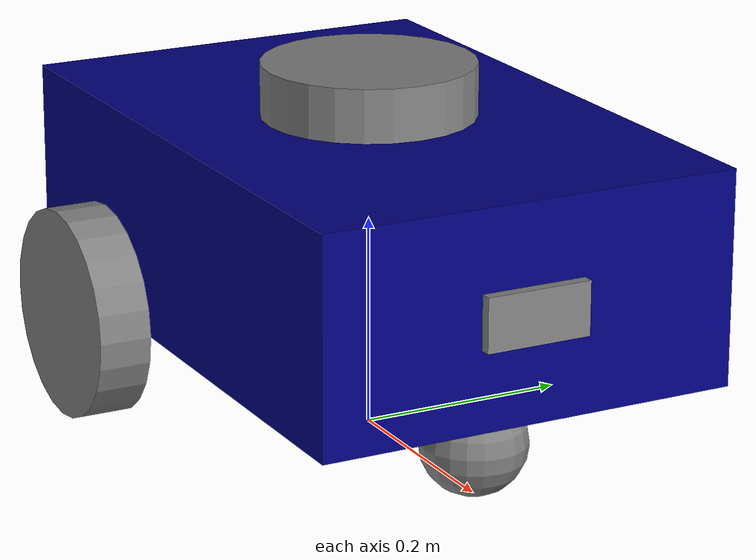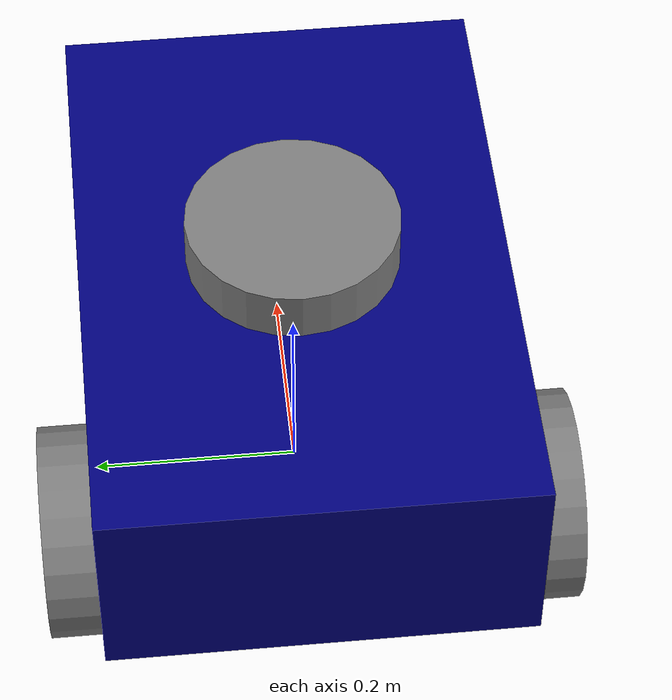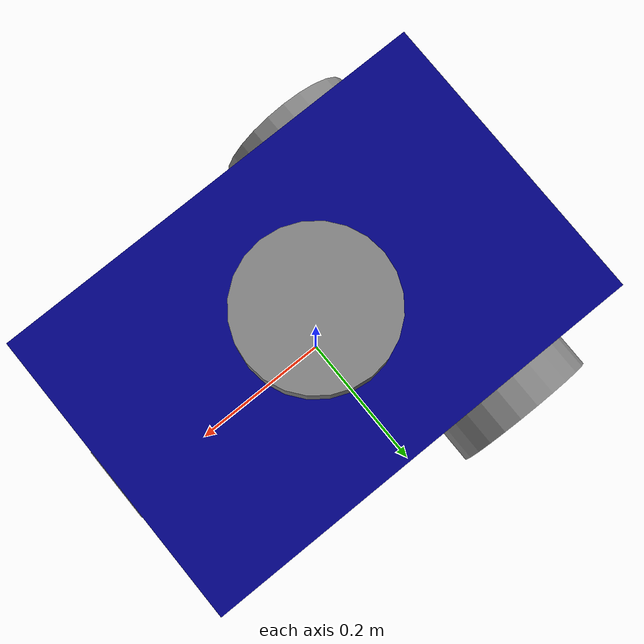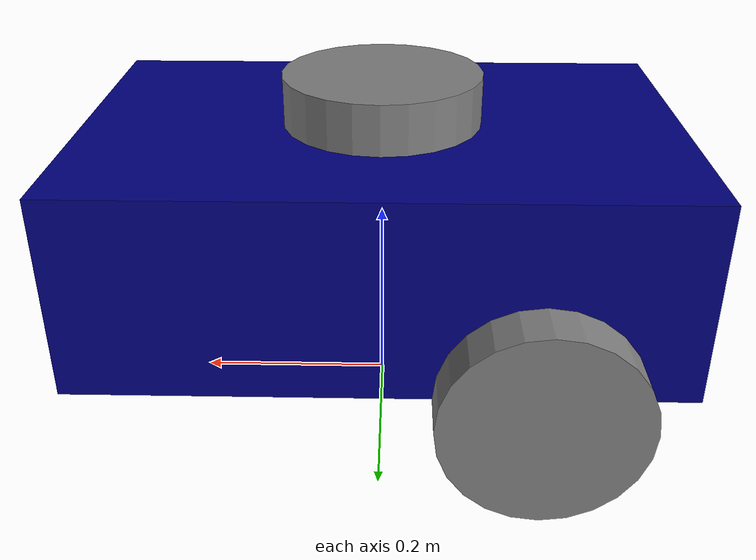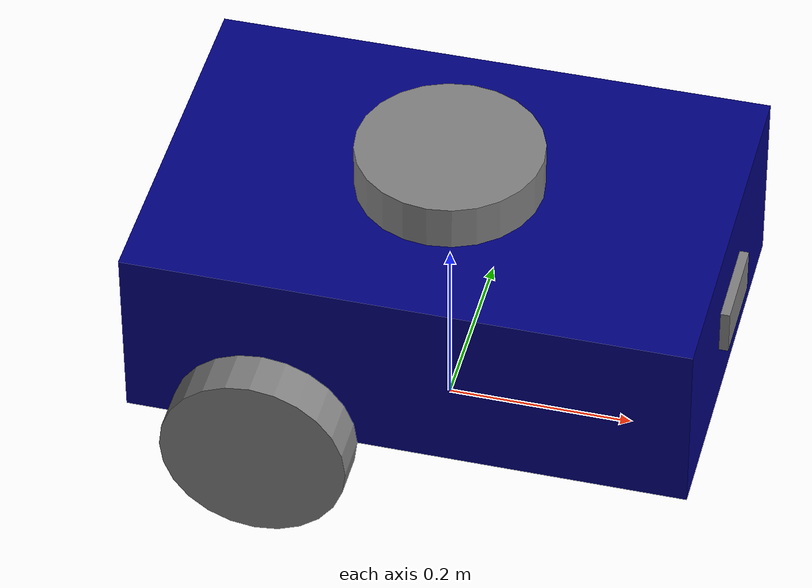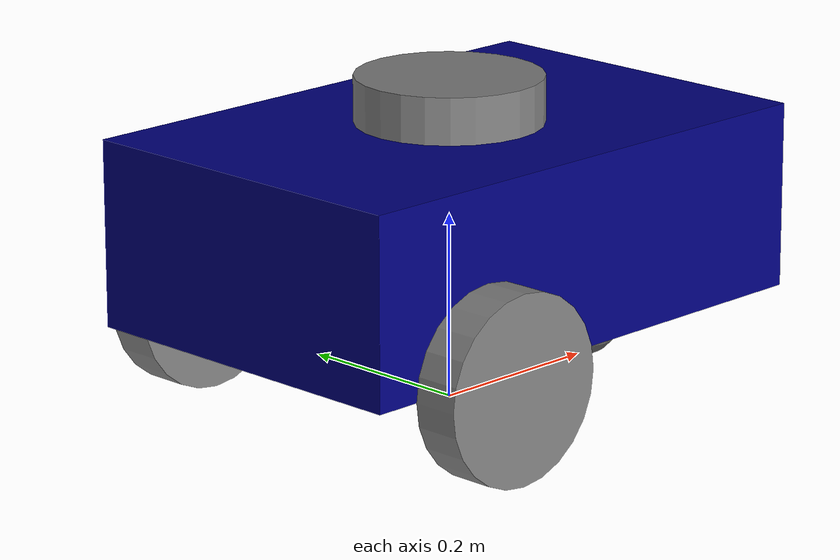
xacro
<?xml version="1.0"?>
<robot name="diff_robot" xmlns:xacro="http://www.ros.org/wiki/xacro">

    <xacro:include filename="common_properties.xacro" />
    <xacro:include filename="mobile_base.xacro" />
    <xacro:include filename="mobile_base_gazebo.xacro" />
    <xacro:include filename="camera.xacro" />
    <xacro:include filename="lidar.xacro" />

</robot>

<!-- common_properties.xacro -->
<robot xmlns:xacro="http://www.ros.org/wiki/xacro">

    <material name="blue">
        <color rgba="0 0 0.5 1" />
    </material>

    <material name="grey">
        <color rgba="0.5 0.5 0.5 1" />
    </material>

    <material name="orange">
        <color rgba="1.0 0.5 0 1" />
    </material>

    <material name="yellow">
        <color rgba="1.0 1.0 0 1" />
    </material>

    <xacro:macro name="box_inertia" params="m l w h xyz rpy">
        <inertial>
            <origin xyz="${xyz}" rpy="${rpy}" />
            <mass value="${m}" />
            <inertia ixx="${(m/12) * (h*h + w*w)}" ixy="0" ixz="0"
                     iyy="${(m/12) * (h*h + l*l)}" iyz="0"
                     izz="${(m/12) * (w*w + l*l)}" />
        </inertial>
    </xacro:macro>

    <xacro:macro name="cylinder_inertia" params="m r h xyz rpy">
        <inertial>
            <origin xyz="${xyz}" rpy="${rpy}" />
            <mass value="${m}" />
            <inertia ixx="${(m/12) * (3*r*r + h*h)}" ixy="0" ixz="0"
                     iyy="${(m/12) * (3*r*r + h*h)}" iyz="0"
                     izz="${(m/2) * (r*r)}" />
        </inertial>
    </xacro:macro>

    <xacro:macro name="sphere_inertia" params="m r xyz rpy">
        <inertial>
            <origin xyz="${xyz}" rpy="${rpy}" />
            <mass value="${m}" />
            <inertia ixx="${(2/5) * m * r * r}" ixy="0" ixz="0"
                     iyy="${(2/5) * m * r * r}" iyz="0"
                     izz="${(2/5) * m * r * r}" />
        </inertial>
    </xacro:macro>

</robot>

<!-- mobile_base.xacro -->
<robot xmlns:xacro="http://www.ros.org/wiki/xacro">

    <xacro:property name="base_length" value="0.6" />
    <xacro:property name="base_width" value="0.4" />
    <xacro:property name="base_height" value="0.2" />
    <xacro:property name="wheel_radius" value="0.1" />
    <xacro:property name="wheel_length" value="0.05" />

    <link name="base_footprint" />

    <link name="base_link">
        <visual>
            <geometry>
                <box size="${base_length} ${base_width} ${base_height}" />
            </geometry>
            <origin xyz="0 0 ${base_height / 2.0}" rpy="0 0 0" />
            <material name="blue" />
        </visual>
        <collision>
            <geometry>
                <box size="${base_length} ${base_width} ${base_height}" />
            </geometry>
            <origin xyz="0 0 ${base_height / 2.0}" rpy="0 0 0" />
        </collision>
        <xacro:box_inertia m="5.0" l="${2*base_length}" w="${2*base_width}" h="${2*base_height}"
                           xyz="0 0 ${base_height / 2.0}" rpy="0 0 0" />
    </link>

    <xacro:macro name="wheel_link" params="prefix">
        <link name="${prefix}_wheel_link">
            <visual>
                <geometry>
                    <cylinder radius="${wheel_radius}" length="${wheel_length}" />
                </geometry>
                <origin xyz="0 0 0" rpy="${pi / 2.0} 0 0" />
                <material name="grey" />
            </visual>
            <collision>
                <geometry>
                    <cylinder radius="${wheel_radius}" length="${wheel_length}" />
                </geometry>
                <origin xyz="0 0 0" rpy="${pi / 2.0} 0 0" />
            </collision>
            <xacro:cylinder_inertia m="1.0" r="${2*wheel_radius}" h="${2*wheel_length}"
                                    xyz="0 0 0" rpy="${pi / 2.0} 0 0" />
        </link>
    </xacro:macro>

    <xacro:wheel_link prefix="right" />
    <xacro:wheel_link prefix="left" />

    <link name="caster_wheel_link">
        <visual>
            <geometry>
                <sphere radius="${wheel_radius / 2.0}" />
            </geometry>
            <origin xyz="0 0 0" rpy="0 0 0" />
            <material name="grey" />
        </visual>
        <collision>
            <geometry>
                <sphere radius="${wheel_radius / 2.0}" />
            </geometry>
            <origin xyz="0 0 0" rpy="0 0 0" />
        </collision>
        <xacro:sphere_inertia m="0.5" r="${2*wheel_radius / 2.0}"
                              xyz="0 0 0" rpy="0 0 0" />
    </link>

    <joint name="base_joint" type="fixed">
        <parent link="base_footprint" />
        <child link="base_link" />
        <origin xyz="0 0 ${wheel_radius}" rpy="0 0 0"/>
    </joint>

    <joint name="base_right_wheel_joint" type="continuous">
        <parent link="base_link" />
        <child link="right_wheel_link" />
        <origin xyz="${-base_length / 4.0} ${-(base_width + wheel_length) / 2.0} 0" rpy="0 0 0" />
        <axis xyz="0 1 0" />
    </joint>

    <joint name="base_left_wheel_joint" type="continuous">
        <parent link="base_link" />
        <child link="left_wheel_link" />
        <origin xyz="${-base_length / 4.0} ${(base_width + wheel_length) / 2.0} 0" rpy="0 0 0" />
        <axis xyz="0 1 0" />
    </joint>

    <joint name="base_caster_wheel_joint" type="fixed">
        <parent link="base_link" />
        <child link="caster_wheel_link" />
        <origin xyz="${base_length / 3.0} 0 ${-wheel_radius / 2.0}" rpy="0 0 0" />
    </joint>

</robot>

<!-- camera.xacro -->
<robot xmlns:xacro="http://www.ros.org/wiki/xacro">

    <xacro:property name="camera_length" value="0.01" />
    <xacro:property name="camera_width" value="0.1" />
    <xacro:property name="camera_height" value="0.05" />

    <link name="camera_link">
        <visual>
            <geometry>
                <box size="${camera_length} ${camera_width} ${camera_height}" />
            </geometry>
            <material name="grey" />
        </visual>
        <collision>
            <geometry>
                <box size="${camera_length} ${camera_width} ${camera_height}" />
            </geometry>
        </collision>
        <xacro:box_inertia m="0.1" l="${camera_length}" w="${camera_width}" h="${camera_height}"
                           xyz="0 0 0" rpy="0 0 0" />
    </link>

    <joint name="base_camera_joint" type="fixed">
        <parent link="base_link" />
        <child link="camera_link" />
        <origin xyz="${(base_length + camera_length) / 2.0} 0 ${base_height / 2.0}" rpy="0 0 0" />
    </joint>

    <link name="camera_link_optical">
    </link>

    <joint name="camera_optical_joint" type="fixed">
        <!-- these values have to be these values otherwise the gazebo camera
            image won't be aligned properly with the frame it is supposedly
            originating from -->
        <origin xyz="0 0 0" rpy="${-pi/2} 0 ${-pi/2}"/>
        <parent link="camera_link"/>
        <child link="camera_link_optical"/>
    </joint>

    <gazebo reference="camera_link" >
        <material>Gazebo/Red</material>
    </gazebo>

    <gazebo reference="camera_link">
        <sensor name="camera_sensor" type="depth">
            <pose>0 0 0 0 0 0</pose>
            <visualize>true</visualize>
            <update_rate>10.0</update_rate>
            <camera>
                <format>R8G8B8</format>
                <width>640</width>
                <height>480</height>
            </camera>
            <clip>
                <near>0.05</near>
                <far>8.0</far>
            </clip>
            <plugin name="camera_controller" filename="libgazebo_ros_camera.so">
                <frame_name>camera_link_optical</frame_name>
            </plugin>
        </sensor>
    </gazebo>

</robot>

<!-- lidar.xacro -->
<robot xmlns:xacro="http://www.ros.org/wiki/xacro">

    <link name="lidar_link">
            <visual>
                <geometry>
                    <cylinder radius="0.1" length="0.05" />
                </geometry>
                <origin xyz="0 0 0" rpy="0 0 0" />
                <material name="grey" />
            </visual>
            <collision>
                <geometry>
                    <cylinder radius="0.1" length="0.05" />
                </geometry>
                    <origin xyz="0 0 0" rpy="0 0 0" />
            </collision>
            <xacro:cylinder_inertia m="0.1" r="0.1" h="0.05"
                                        xyz="0 0 0" rpy="0 0 0" />
    </link>

    <link name="lidar_sensor" />

    <joint name="lidar_joint" type="fixed" >
        <parent link="base_link" />
        <child link="lidar_link" />
        <origin xyz="0 0 ${base_height+0.05/2}" rpy="0 0 0" />
    </joint>

    <joint name="lidar_sensor_joint" type="fixed" >
        <parent link="lidar_link" />
        <child link="lidar_sensor" />
        <origin xyz="0 0 0" rpy="0 0 0" />
    </joint>

    <gazebo reference="lidar_sensor">
        <sensor type="ray" name="lidar">
            <pose>0 0 0 0 0 0</pose>
            <visualize>true</visualize>
            <always_on>true</always_on>
            <update_rate>15</update_rate>
            <ray>
                <scan>
                    <horizontal>
                        <samples>360</samples>
                        <resolution>1</resolution>
                        <min_angle>-3.14</min_angle>
                        <max_angle>3.14</max_angle>
                    </horizontal>
                </scan>
                <range>
                    <min>0.15</min>
                    <max>1.5</max>
                    <resolution>0.017453</resolution>
                </range>
                <noise>
                    <type>gaussian</type>
                    <mean>0.0</mean>
                    <stddev>0.01</stddev>
                </noise>
            </ray>
            <plugin name="laser_plugin" filename="libgazebo_ros_ray_sensor.so">
                <ros>
                    <remapping>~/out:=scan</remapping>
                </ros>
                <output_type>sensor_msgs/LaserScan</output_type>
                <frame_name>lidar_sensor</frame_name>
            </plugin>
        </sensor>
    </gazebo>

</robot>
